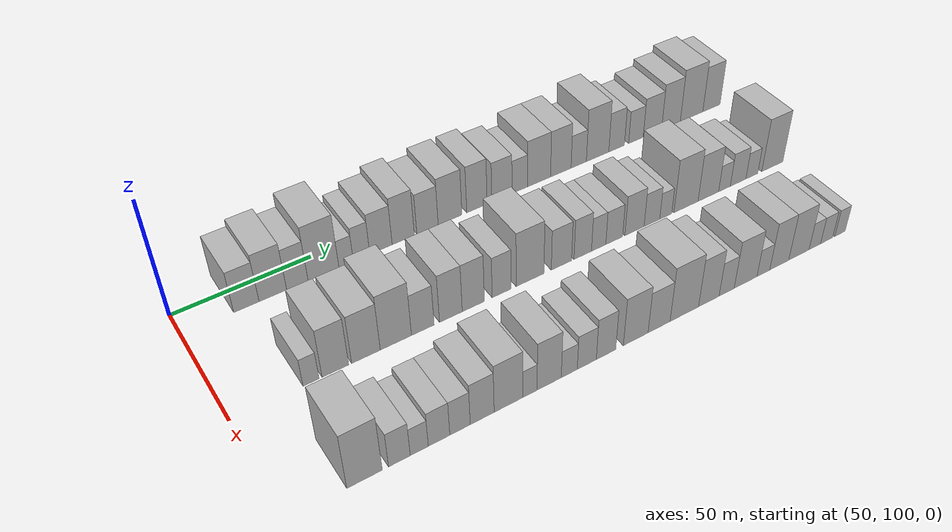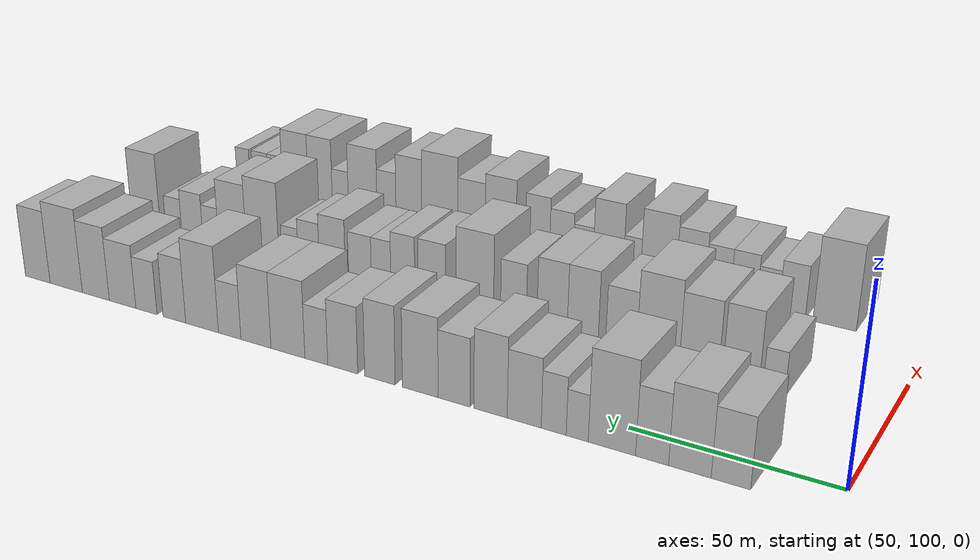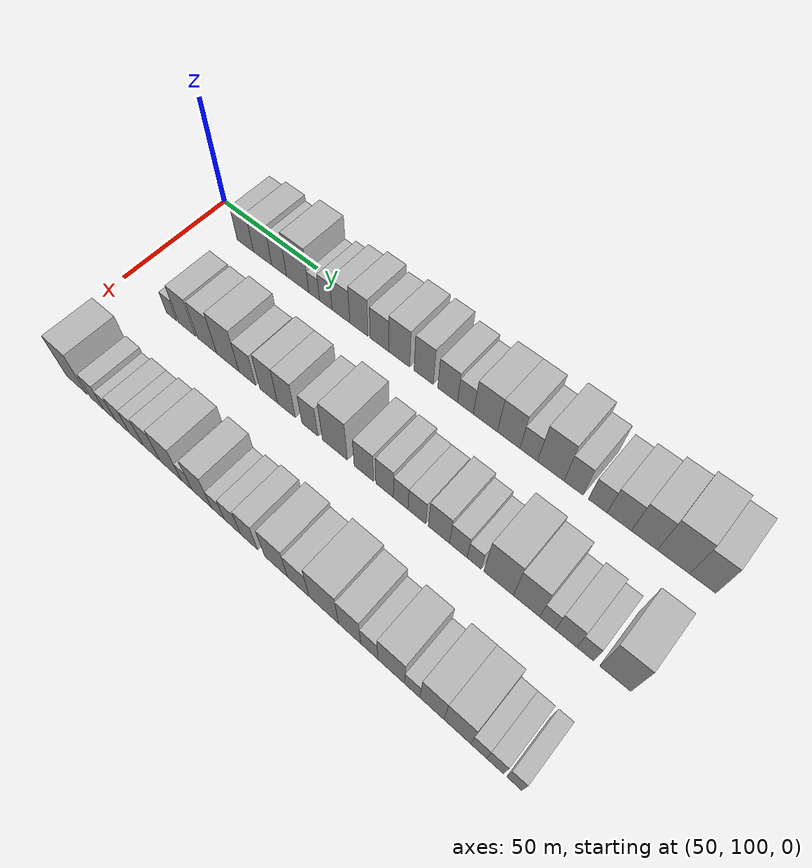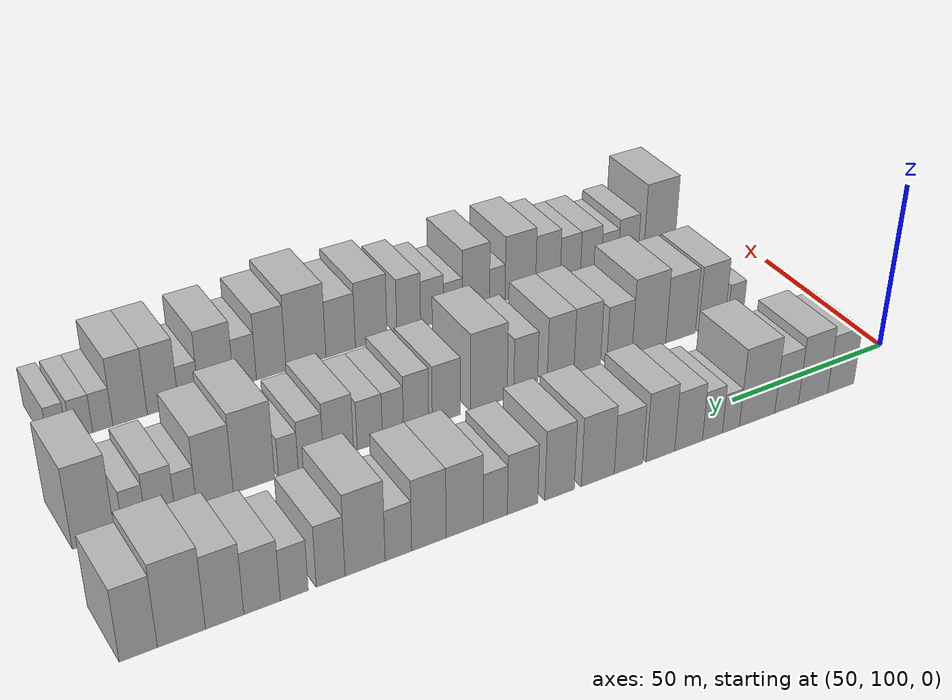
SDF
<sdf version="1.6">
 <world name="default">
  <model name="building_85">
   <static>1</static>
   <pose>50.0000 122.3066 0 0.000000 0.000000 0.000000</pose>
   <link name="link">
    <pose>0 0 9.00 0 0 0</pose>
    <collision name="collision"><geometry><box><size>20.0000 8.8296 18.0000</size></box></geometry></collision>
    <visual name="visual">
     <cast_shadows>0</cast_shadows>
     <geometry><box><size>20.0000 8.8296 18.0000</size></box></geometry>
     <material>
      <script>
       <uri>model://HANNAS_wall/materials/scripts</uri>
       <uri>model://HANNAS_wall/materials/textures</uri>
       <name>vrc/HANNAS_wall</name>
      </script>
     </material>
    </visual>
   </link>
  </model>
  <model name="building_86">
   <static>1</static>
   <pose>50.0000 131.6038 0 0.000000 0.000000 0.000000</pose>
   <link name="link">
    <pose>0 0 10.50 0 0 0</pose>
    <collision name="collision"><geometry><box><size>20.0000 9.7647 21.0000</size></box></geometry></collision>
    <visual name="visual">
     <cast_shadows>0</cast_shadows>
     <geometry><box><size>20.0000 9.7647 21.0000</size></box></geometry>
     <material>
      <script>
       <uri>model://HANNAS_wall/materials/scripts</uri>
       <uri>model://HANNAS_wall/materials/textures</uri>
       <name>vrc/HANNAS_wall</name>
      </script>
     </material>
    </visual>
   </link>
  </model>
  <model name="building_87">
   <static>1</static>
   <pose>50.0000 140.3548 0 0.000000 0.000000 0.000000</pose>
   <link name="link">
    <pose>0 0 9.00 0 0 0</pose>
    <collision name="collision"><geometry><box><size>20.0000 7.7373 18.0000</size></box></geometry></collision>
    <visual name="visual">
     <cast_shadows>0</cast_shadows>
     <geometry><box><size>20.0000 7.7373 18.0000</size></box></geometry>
     <material>
      <script>
       <uri>model://HANNAS_wall/materials/scripts</uri>
       <uri>model://HANNAS_wall/materials/textures</uri>
       <name>vrc/HANNAS_wall</name>
      </script>
     </material>
    </visual>
   </link>
  </model>
  <model name="building_88">
   <static>1</static>
   <pose>50.0000 149.9115 0 0.000000 0.000000 0.000000</pose>
   <link name="link">
    <pose>0 0 12.00 0 0 0</pose>
    <collision name="collision"><geometry><box><size>20.0000 11.3761 24.0000</size></box></geometry></collision>
    <visual name="visual">
     <cast_shadows>0</cast_shadows>
     <geometry><box><size>20.0000 11.3761 24.0000</size></box></geometry>
     <material>
      <script>
       <uri>model://HANNAS_wall/materials/scripts</uri>
       <uri>model://HANNAS_wall/materials/textures</uri>
       <name>vrc/HANNAS_wall</name>
      </script>
     </material>
    </visual>
   </link>
  </model>
  <model name="building_89">
   <static>1</static>
   <pose>50.0000 158.3068 0 0.000000 0.000000 0.000000</pose>
   <link name="link">
    <pose>0 0 6.00 0 0 0</pose>
    <collision name="collision"><geometry><box><size>20.0000 5.4146 12.0000</size></box></geometry></collision>
    <visual name="visual">
     <cast_shadows>0</cast_shadows>
     <geometry><box><size>20.0000 5.4146 12.0000</size></box></geometry>
     <material>
      <script>
       <uri>model://HANNAS_wall/materials/scripts</uri>
       <uri>model://HANNAS_wall/materials/textures</uri>
       <name>vrc/HANNAS_wall</name>
      </script>
     </material>
    </visual>
   </link>
  </model>
  <model name="building_90">
   <static>1</static>
   <pose>50.0000 164.1331 0 0.000000 0.000000 0.000000</pose>
   <link name="link">
    <pose>0 0 7.50 0 0 0</pose>
    <collision name="collision"><geometry><box><size>20.0000 6.2380 15.0000</size></box></geometry></collision>
    <visual name="visual">
     <cast_shadows>0</cast_shadows>
     <geometry><box><size>20.0000 6.2380 15.0000</size></box></geometry>
     <material>
      <script>
       <uri>model://HANNAS_wall/materials/scripts</uri>
       <uri>model://HANNAS_wall/materials/textures</uri>
       <name>vrc/HANNAS_wall</name>
      </script>
     </material>
    </visual>
   </link>
  </model>
  <model name="building_91">
   <static>1</static>
   <pose>50.0000 171.5712 0 0.000000 0.000000 0.000000</pose>
   <link name="link">
    <pose>0 0 9.00 0 0 0</pose>
    <collision name="collision"><geometry><box><size>20.0000 8.6383 18.0000</size></box></geometry></collision>
    <visual name="visual">
     <cast_shadows>0</cast_shadows>
     <geometry><box><size>20.0000 8.6383 18.0000</size></box></geometry>
     <material>
      <script>
       <uri>model://HANNAS_wall/materials/scripts</uri>
       <uri>model://HANNAS_wall/materials/textures</uri>
       <name>vrc/HANNAS_wall</name>
      </script>
     </material>
    </visual>
   </link>
  </model>
  <model name="building_92">
   <static>1</static>
   <pose>50.0000 180.2404 0 0.000000 0.000000 0.000000</pose>
   <link name="link">
    <pose>0 0 10.50 0 0 0</pose>
    <collision name="collision"><geometry><box><size>20.0000 8.7001 21.0000</size></box></geometry></collision>
    <visual name="visual">
     <cast_shadows>0</cast_shadows>
     <geometry><box><size>20.0000 8.7001 21.0000</size></box></geometry>
     <material>
      <script>
       <uri>model://HANNAS_wall/materials/scripts</uri>
       <uri>model://HANNAS_wall/materials/textures</uri>
       <name>vrc/HANNAS_wall</name>
      </script>
     </material>
    </visual>
   </link>
  </model>
  <model name="building_93">
   <static>1</static>
   <pose>50.0000 189.8528 0 0.000000 0.000000 0.000000</pose>
   <link name="link">
    <pose>0 0 9.00 0 0 0</pose>
    <collision name="collision"><geometry><box><size>20.0000 8.5246 18.0000</size></box></geometry></collision>
    <visual name="visual">
     <cast_shadows>0</cast_shadows>
     <geometry><box><size>20.0000 8.5246 18.0000</size></box></geometry>
     <material>
      <script>
       <uri>model://HANNAS_wall/materials/scripts</uri>
       <uri>model://HANNAS_wall/materials/textures</uri>
       <name>vrc/HANNAS_wall</name>
      </script>
     </material>
    </visual>
   </link>
  </model>
  <model name="building_94">
   <static>1</static>
   <pose>50.0000 198.9547 0 0.000000 0.000000 0.000000</pose>
   <link name="link">
    <pose>0 0 10.50 0 0 0</pose>
    <collision name="collision"><geometry><box><size>20.0000 9.6792 21.0000</size></box></geometry></collision>
    <visual name="visual">
     <cast_shadows>0</cast_shadows>
     <geometry><box><size>20.0000 9.6792 21.0000</size></box></geometry>
     <material>
      <script>
       <uri>model://HANNAS_wall/materials/scripts</uri>
       <uri>model://HANNAS_wall/materials/textures</uri>
       <name>vrc/HANNAS_wall</name>
      </script>
     </material>
    </visual>
   </link>
  </model>
  <model name="building_95">
   <static>1</static>
   <pose>50.0000 210.0387 0 0.000000 0.000000 0.000000</pose>
   <link name="link">
    <pose>0 0 10.50 0 0 0</pose>
    <collision name="collision"><geometry><box><size>20.0000 8.4889 21.0000</size></box></geometry></collision>
    <visual name="visual">
     <cast_shadows>0</cast_shadows>
     <geometry><box><size>20.0000 8.4889 21.0000</size></box></geometry>
     <material>
      <script>
       <uri>model://HANNAS_wall/materials/scripts</uri>
       <uri>model://HANNAS_wall/materials/textures</uri>
       <name>vrc/HANNAS_wall</name>
      </script>
     </material>
    </visual>
   </link>
  </model>
  <model name="building_96">
   <static>1</static>
   <pose>50.0000 220.5793 0 0.000000 0.000000 0.000000</pose>
   <link name="link">
    <pose>0 0 9.00 0 0 0</pose>
    <collision name="collision"><geometry><box><size>20.0000 8.5923 18.0000</size></box></geometry></collision>
    <visual name="visual">
     <cast_shadows>0</cast_shadows>
     <geometry><box><size>20.0000 8.5923 18.0000</size></box></geometry>
     <material>
      <script>
       <uri>model://HANNAS_wall/materials/scripts</uri>
       <uri>model://HANNAS_wall/materials/textures</uri>
       <name>vrc/HANNAS_wall</name>
      </script>
     </material>
    </visual>
   </link>
  </model>
  <model name="building_97">
   <static>1</static>
   <pose>50.0000 228.2194 0 0.000000 0.000000 0.000000</pose>
   <link name="link">
    <pose>0 0 7.50 0 0 0</pose>
    <collision name="collision"><geometry><box><size>20.0000 6.6878 15.0000</size></box></geometry></collision>
    <visual name="visual">
     <cast_shadows>0</cast_shadows>
     <geometry><box><size>20.0000 6.6878 15.0000</size></box></geometry>
     <material>
      <script>
       <uri>model://HANNAS_wall/materials/scripts</uri>
       <uri>model://HANNAS_wall/materials/textures</uri>
       <name>vrc/HANNAS_wall</name>
      </script>
     </material>
    </visual>
   </link>
  </model>
  <model name="building_98">
   <static>1</static>
   <pose>50.0000 236.6185 0 0.000000 0.000000 0.000000</pose>
   <link name="link">
    <pose>0 0 10.50 0 0 0</pose>
    <collision name="collision"><geometry><box><size>20.0000 10.1104 21.0000</size></box></geometry></collision>
    <visual name="visual">
     <cast_shadows>0</cast_shadows>
     <geometry><box><size>20.0000 10.1104 21.0000</size></box></geometry>
     <material>
      <script>
       <uri>model://HANNAS_wall/materials/scripts</uri>
       <uri>model://HANNAS_wall/materials/textures</uri>
       <name>vrc/HANNAS_wall</name>
      </script>
     </material>
    </visual>
   </link>
  </model>
  <model name="building_99">
   <static>1</static>
   <pose>50.0000 246.2642 0 0.000000 0.000000 0.000000</pose>
   <link name="link">
    <pose>0 0 10.50 0 0 0</pose>
    <collision name="collision"><geometry><box><size>20.0000 9.1811 21.0000</size></box></geometry></collision>
    <visual name="visual">
     <cast_shadows>0</cast_shadows>
     <geometry><box><size>20.0000 9.1811 21.0000</size></box></geometry>
     <material>
      <script>
       <uri>model://HANNAS_wall/materials/scripts</uri>
       <uri>model://HANNAS_wall/materials/textures</uri>
       <name>vrc/HANNAS_wall</name>
      </script>
     </material>
    </visual>
   </link>
  </model>
  <model name="building_100">
   <static>1</static>
   <pose>50.0000 254.3415 0 0.000000 0.000000 0.000000</pose>
   <link name="link">
    <pose>0 0 7.50 0 0 0</pose>
    <collision name="collision"><geometry><box><size>20.0000 6.9734 15.0000</size></box></geometry></collision>
    <visual name="visual">
     <cast_shadows>0</cast_shadows>
     <geometry><box><size>20.0000 6.9734 15.0000</size></box></geometry>
     <material>
      <script>
       <uri>model://HANNAS_wall/materials/scripts</uri>
       <uri>model://HANNAS_wall/materials/textures</uri>
       <name>vrc/HANNAS_wall</name>
      </script>
     </material>
    </visual>
   </link>
  </model>
  <model name="building_101">
   <static>1</static>
   <pose>50.0000 263.0122 0 0.000000 0.000000 0.000000</pose>
   <link name="link">
    <pose>0 0 12.00 0 0 0</pose>
    <collision name="collision"><geometry><box><size>20.0000 10.3681 24.0000</size></box></geometry></collision>
    <visual name="visual">
     <cast_shadows>0</cast_shadows>
     <geometry><box><size>20.0000 10.3681 24.0000</size></box></geometry>
     <material>
      <script>
       <uri>model://HANNAS_wall/materials/scripts</uri>
       <uri>model://HANNAS_wall/materials/textures</uri>
       <name>vrc/HANNAS_wall</name>
      </script>
     </material>
    </visual>
   </link>
  </model>
  <model name="building_102">
   <static>1</static>
   <pose>50.0000 271.8606 0 0.000000 0.000000 0.000000</pose>
   <link name="link">
    <pose>0 0 9.00 0 0 0</pose>
    <collision name="collision"><geometry><box><size>20.0000 7.3289 18.0000</size></box></geometry></collision>
    <visual name="visual">
     <cast_shadows>0</cast_shadows>
     <geometry><box><size>20.0000 7.3289 18.0000</size></box></geometry>
     <material>
      <script>
       <uri>model://HANNAS_wall/materials/scripts</uri>
       <uri>model://HANNAS_wall/materials/textures</uri>
       <name>vrc/HANNAS_wall</name>
      </script>
     </material>
    </visual>
   </link>
  </model>
  <model name="building_103">
   <static>1</static>
   <pose>50.0000 281.0077 0 0.000000 0.000000 0.000000</pose>
   <link name="link">
    <pose>0 0 7.50 0 0 0</pose>
    <collision name="collision"><geometry><box><size>20.0000 6.9652 15.0000</size></box></geometry></collision>
    <visual name="visual">
     <cast_shadows>0</cast_shadows>
     <geometry><box><size>20.0000 6.9652 15.0000</size></box></geometry>
     <material>
      <script>
       <uri>model://HANNAS_wall/materials/scripts</uri>
       <uri>model://HANNAS_wall/materials/textures</uri>
       <name>vrc/HANNAS_wall</name>
      </script>
     </material>
    </visual>
   </link>
  </model>
  <model name="building_104">
   <static>1</static>
   <pose>50.0000 288.9499 0 0.000000 0.000000 0.000000</pose>
   <link name="link">
    <pose>0 0 9.00 0 0 0</pose>
    <collision name="collision"><geometry><box><size>20.0000 8.9192 18.0000</size></box></geometry></collision>
    <visual name="visual">
     <cast_shadows>0</cast_shadows>
     <geometry><box><size>20.0000 8.9192 18.0000</size></box></geometry>
     <material>
      <script>
       <uri>model://HANNAS_wall/materials/scripts</uri>
       <uri>model://HANNAS_wall/materials/textures</uri>
       <name>vrc/HANNAS_wall</name>
      </script>
     </material>
    </visual>
   </link>
  </model>
  <model name="building_105">
   <static>1</static>
   <pose>50.0000 298.0296 0 0.000000 0.000000 0.000000</pose>
   <link name="link">
    <pose>0 0 10.50 0 0 0</pose>
    <collision name="collision"><geometry><box><size>20.0000 9.2401 21.0000</size></box></geometry></collision>
    <visual name="visual">
     <cast_shadows>0</cast_shadows>
     <geometry><box><size>20.0000 9.2401 21.0000</size></box></geometry>
     <material>
      <script>
       <uri>model://HANNAS_wall/materials/scripts</uri>
       <uri>model://HANNAS_wall/materials/textures</uri>
       <name>vrc/HANNAS_wall</name>
      </script>
     </material>
    </visual>
   </link>
  </model>
  <model name="building_106">
   <static>1</static>
   <pose>50.0000 308.3014 0 0.000000 0.000000 0.000000</pose>
   <link name="link">
    <pose>0 0 12.00 0 0 0</pose>
    <collision name="collision"><geometry><box><size>20.0000 11.3035 24.0000</size></box></geometry></collision>
    <visual name="visual">
     <cast_shadows>0</cast_shadows>
     <geometry><box><size>20.0000 11.3035 24.0000</size></box></geometry>
     <material>
      <script>
       <uri>model://HANNAS_wall/materials/scripts</uri>
       <uri>model://HANNAS_wall/materials/textures</uri>
       <name>vrc/HANNAS_wall</name>
      </script>
     </material>
    </visual>
   </link>
  </model>
  <model name="building_107">
   <static>1</static>
   <pose>50.0000 318.3527 0 0.000000 0.000000 0.000000</pose>
   <link name="link">
    <pose>0 0 10.50 0 0 0</pose>
    <collision name="collision"><geometry><box><size>20.0000 8.7992 21.0000</size></box></geometry></collision>
    <visual name="visual">
     <cast_shadows>0</cast_shadows>
     <geometry><box><size>20.0000 8.7992 21.0000</size></box></geometry>
     <material>
      <script>
       <uri>model://HANNAS_wall/materials/scripts</uri>
       <uri>model://HANNAS_wall/materials/textures</uri>
       <name>vrc/HANNAS_wall</name>
      </script>
     </material>
    </visual>
   </link>
  </model>
  <model name="building_226">
   <static>1</static>
   <pose>90.0000 126.4555 0 0.000000 0.000000 0.000000</pose>
   <link name="link">
    <pose>0 0 6.00 0 0 0</pose>
    <collision name="collision"><geometry><box><size>20.0000 5.3719 12.0000</size></box></geometry></collision>
    <visual name="visual">
     <cast_shadows>0</cast_shadows>
     <geometry><box><size>20.0000 5.3719 12.0000</size></box></geometry>
     <material>
      <script>
       <uri>model://HANNAS_wall/materials/scripts</uri>
       <uri>model://HANNAS_wall/materials/textures</uri>
       <name>vrc/HANNAS_wall</name>
      </script>
     </material>
    </visual>
   </link>
  </model>
  <model name="building_227">
   <static>1</static>
   <pose>90.0000 134.6714 0 0.000000 0.000000 0.000000</pose>
   <link name="link">
    <pose>0 0 10.50 0 0 0</pose>
    <collision name="collision"><geometry><box><size>20.0000 9.0597 21.0000</size></box></geometry></collision>
    <visual name="visual">
     <cast_shadows>0</cast_shadows>
     <geometry><box><size>20.0000 9.0597 21.0000</size></box></geometry>
     <material>
      <script>
       <uri>model://HANNAS_wall/materials/scripts</uri>
       <uri>model://HANNAS_wall/materials/textures</uri>
       <name>vrc/HANNAS_wall</name>
      </script>
     </material>
    </visual>
   </link>
  </model>
  <model name="building_228">
   <static>1</static>
   <pose>90.0000 145.1878 0 0.000000 0.000000 0.000000</pose>
   <link name="link">
    <pose>0 0 10.50 0 0 0</pose>
    <collision name="collision"><geometry><box><size>20.0000 9.9732 21.0000</size></box></geometry></collision>
    <visual name="visual">
     <cast_shadows>0</cast_shadows>
     <geometry><box><size>20.0000 9.9732 21.0000</size></box></geometry>
     <material>
      <script>
       <uri>model://HANNAS_wall/materials/scripts</uri>
       <uri>model://HANNAS_wall/materials/textures</uri>
       <name>vrc/HANNAS_wall</name>
      </script>
     </material>
    </visual>
   </link>
  </model>
  <model name="building_229">
   <static>1</static>
   <pose>90.0000 155.7486 0 0.000000 0.000000 0.000000</pose>
   <link name="link">
    <pose>0 0 12.00 0 0 0</pose>
    <collision name="collision"><geometry><box><size>20.0000 11.1484 24.0000</size></box></geometry></collision>
    <visual name="visual">
     <cast_shadows>0</cast_shadows>
     <geometry><box><size>20.0000 11.1484 24.0000</size></box></geometry>
     <material>
      <script>
       <uri>model://HANNAS_wall/materials/scripts</uri>
       <uri>model://HANNAS_wall/materials/textures</uri>
       <name>vrc/HANNAS_wall</name>
      </script>
     </material>
    </visual>
   </link>
  </model>
  <model name="building_230">
   <static>1</static>
   <pose>90.0000 165.4426 0 0.000000 0.000000 0.000000</pose>
   <link name="link">
    <pose>0 0 9.00 0 0 0</pose>
    <collision name="collision"><geometry><box><size>20.0000 8.2397 18.0000</size></box></geometry></collision>
    <visual name="visual">
     <cast_shadows>0</cast_shadows>
     <geometry><box><size>20.0000 8.2397 18.0000</size></box></geometry>
     <material>
      <script>
       <uri>model://HANNAS_wall/materials/scripts</uri>
       <uri>model://HANNAS_wall/materials/textures</uri>
       <name>vrc/HANNAS_wall</name>
      </script>
     </material>
    </visual>
   </link>
  </model>
  <model name="building_231">
   <static>1</static>
   <pose>90.0000 175.7999 0 0.000000 0.000000 0.000000</pose>
   <link name="link">
    <pose>0 0 10.50 0 0 0</pose>
    <collision name="collision"><geometry><box><size>20.0000 8.4748 21.0000</size></box></geometry></collision>
    <visual name="visual">
     <cast_shadows>0</cast_shadows>
     <geometry><box><size>20.0000 8.4748 21.0000</size></box></geometry>
     <material>
      <script>
       <uri>model://HANNAS_wall/materials/scripts</uri>
       <uri>model://HANNAS_wall/materials/textures</uri>
       <name>vrc/HANNAS_wall</name>
      </script>
     </material>
    </visual>
   </link>
  </model>
  <model name="building_232">
   <static>1</static>
   <pose>90.0000 184.2462 0 0.000000 0.000000 0.000000</pose>
   <link name="link">
    <pose>0 0 10.50 0 0 0</pose>
    <collision name="collision"><geometry><box><size>20.0000 8.4179 21.0000</size></box></geometry></collision>
    <visual name="visual">
     <cast_shadows>0</cast_shadows>
     <geometry><box><size>20.0000 8.4179 21.0000</size></box></geometry>
     <material>
      <script>
       <uri>model://HANNAS_wall/materials/scripts</uri>
       <uri>model://HANNAS_wall/materials/textures</uri>
       <name>vrc/HANNAS_wall</name>
      </script>
     </material>
    </visual>
   </link>
  </model>
  <model name="building_233">
   <static>1</static>
   <pose>90.0000 195.1250 0 0.000000 0.000000 0.000000</pose>
   <link name="link">
    <pose>0 0 9.00 0 0 0</pose>
    <collision name="collision"><geometry><box><size>20.0000 7.3397 18.0000</size></box></geometry></collision>
    <visual name="visual">
     <cast_shadows>0</cast_shadows>
     <geometry><box><size>20.0000 7.3397 18.0000</size></box></geometry>
     <material>
      <script>
       <uri>model://HANNAS_wall/materials/scripts</uri>
       <uri>model://HANNAS_wall/materials/textures</uri>
       <name>vrc/HANNAS_wall</name>
      </script>
     </material>
    </visual>
   </link>
  </model>
  <model name="building_234">
   <static>1</static>
   <pose>90.0000 206.3223 0 0.000000 0.000000 0.000000</pose>
   <link name="link">
    <pose>0 0 12.00 0 0 0</pose>
    <collision name="collision"><geometry><box><size>20.0000 11.0550 24.0000</size></box></geometry></collision>
    <visual name="visual">
     <cast_shadows>0</cast_shadows>
     <geometry><box><size>20.0000 11.0550 24.0000</size></box></geometry>
     <material>
      <script>
       <uri>model://HANNAS_wall/materials/scripts</uri>
       <uri>model://HANNAS_wall/materials/textures</uri>
       <name>vrc/HANNAS_wall</name>
      </script>
     </material>
    </visual>
   </link>
  </model>
  <model name="building_235">
   <static>1</static>
   <pose>90.0000 218.9924 0 0.000000 0.000000 0.000000</pose>
   <link name="link">
    <pose>0 0 9.00 0 0 0</pose>
    <collision name="collision"><geometry><box><size>20.0000 8.2851 18.0000</size></box></geometry></collision>
    <visual name="visual">
     <cast_shadows>0</cast_shadows>
     <geometry><box><size>20.0000 8.2851 18.0000</size></box></geometry>
     <material>
      <script>
       <uri>model://HANNAS_wall/materials/scripts</uri>
       <uri>model://HANNAS_wall/materials/textures</uri>
       <name>vrc/HANNAS_wall</name>
      </script>
     </material>
    </visual>
   </link>
  </model>
  <model name="building_236">
   <static>1</static>
   <pose>90.0000 227.7910 0 0.000000 0.000000 0.000000</pose>
   <link name="link">
    <pose>0 0 9.00 0 0 0</pose>
    <collision name="collision"><geometry><box><size>20.0000 7.3121 18.0000</size></box></geometry></collision>
    <visual name="visual">
     <cast_shadows>0</cast_shadows>
     <geometry><box><size>20.0000 7.3121 18.0000</size></box></geometry>
     <material>
      <script>
       <uri>model://HANNAS_wall/materials/scripts</uri>
       <uri>model://HANNAS_wall/materials/textures</uri>
       <name>vrc/HANNAS_wall</name>
      </script>
     </material>
    </visual>
   </link>
  </model>
  <model name="building_237">
   <static>1</static>
   <pose>90.0000 234.4759 0 0.000000 0.000000 0.000000</pose>
   <link name="link">
    <pose>0 0 7.50 0 0 0</pose>
    <collision name="collision"><geometry><box><size>20.0000 6.0578 15.0000</size></box></geometry></collision>
    <visual name="visual">
     <cast_shadows>0</cast_shadows>
     <geometry><box><size>20.0000 6.0578 15.0000</size></box></geometry>
     <material>
      <script>
       <uri>model://HANNAS_wall/materials/scripts</uri>
       <uri>model://HANNAS_wall/materials/textures</uri>
       <name>vrc/HANNAS_wall</name>
      </script>
     </material>
    </visual>
   </link>
  </model>
  <model name="building_238">
   <static>1</static>
   <pose>90.0000 241.1031 0 0.000000 0.000000 0.000000</pose>
   <link name="link">
    <pose>0 0 7.50 0 0 0</pose>
    <collision name="collision"><geometry><box><size>20.0000 7.1966 15.0000</size></box></geometry></collision>
    <visual name="visual">
     <cast_shadows>0</cast_shadows>
     <geometry><box><size>20.0000 7.1966 15.0000</size></box></geometry>
     <material>
      <script>
       <uri>model://HANNAS_wall/materials/scripts</uri>
       <uri>model://HANNAS_wall/materials/textures</uri>
       <name>vrc/HANNAS_wall</name>
      </script>
     </material>
    </visual>
   </link>
  </model>
  <model name="building_239">
   <static>1</static>
   <pose>90.0000 249.8840 0 0.000000 0.000000 0.000000</pose>
   <link name="link">
    <pose>0 0 9.00 0 0 0</pose>
    <collision name="collision"><geometry><box><size>20.0000 8.3651 18.0000</size></box></geometry></collision>
    <visual name="visual">
     <cast_shadows>0</cast_shadows>
     <geometry><box><size>20.0000 8.3651 18.0000</size></box></geometry>
     <material>
      <script>
       <uri>model://HANNAS_wall/materials/scripts</uri>
       <uri>model://HANNAS_wall/materials/textures</uri>
       <name>vrc/HANNAS_wall</name>
      </script>
     </material>
    </visual>
   </link>
  </model>
  <model name="building_240">
   <static>1</static>
   <pose>90.0000 257.5307 0 0.000000 0.000000 0.000000</pose>
   <link name="link">
    <pose>0 0 7.50 0 0 0</pose>
    <collision name="collision"><geometry><box><size>20.0000 6.9283 15.0000</size></box></geometry></collision>
    <visual name="visual">
     <cast_shadows>0</cast_shadows>
     <geometry><box><size>20.0000 6.9283 15.0000</size></box></geometry>
     <material>
      <script>
       <uri>model://HANNAS_wall/materials/scripts</uri>
       <uri>model://HANNAS_wall/materials/textures</uri>
       <name>vrc/HANNAS_wall</name>
      </script>
     </material>
    </visual>
   </link>
  </model>
  <model name="building_241">
   <static>1</static>
   <pose>90.0000 263.6832 0 0.000000 0.000000 0.000000</pose>
   <link name="link">
    <pose>0 0 6.00 0 0 0</pose>
    <collision name="collision"><geometry><box><size>20.0000 5.3765 12.0000</size></box></geometry></collision>
    <visual name="visual">
     <cast_shadows>0</cast_shadows>
     <geometry><box><size>20.0000 5.3765 12.0000</size></box></geometry>
     <material>
      <script>
       <uri>model://HANNAS_wall/materials/scripts</uri>
       <uri>model://HANNAS_wall/materials/textures</uri>
       <name>vrc/HANNAS_wall</name>
      </script>
     </material>
    </visual>
   </link>
  </model>
  <model name="building_242">
   <static>1</static>
   <pose>90.0000 272.8905 0 0.000000 0.000000 0.000000</pose>
   <link name="link">
    <pose>0 0 12.00 0 0 0</pose>
    <collision name="collision"><geometry><box><size>20.0000 11.0382 24.0000</size></box></geometry></collision>
    <visual name="visual">
     <cast_shadows>0</cast_shadows>
     <geometry><box><size>20.0000 11.0382 24.0000</size></box></geometry>
     <material>
      <script>
       <uri>model://HANNAS_wall/materials/scripts</uri>
       <uri>model://HANNAS_wall/materials/textures</uri>
       <name>vrc/HANNAS_wall</name>
      </script>
     </material>
    </visual>
   </link>
  </model>
  <model name="building_243">
   <static>1</static>
   <pose>90.0000 283.2182 0 0.000000 0.000000 0.000000</pose>
   <link name="link">
    <pose>0 0 10.50 0 0 0</pose>
    <collision name="collision"><geometry><box><size>20.0000 9.6172 21.0000</size></box></geometry></collision>
    <visual name="visual">
     <cast_shadows>0</cast_shadows>
     <geometry><box><size>20.0000 9.6172 21.0000</size></box></geometry>
     <material>
      <script>
       <uri>model://HANNAS_wall/materials/scripts</uri>
       <uri>model://HANNAS_wall/materials/textures</uri>
       <name>vrc/HANNAS_wall</name>
      </script>
     </material>
    </visual>
   </link>
  </model>
  <model name="building_244">
   <static>1</static>
   <pose>90.0000 290.7925 0 0.000000 0.000000 0.000000</pose>
   <link name="link">
    <pose>0 0 6.00 0 0 0</pose>
    <collision name="collision"><geometry><box><size>20.0000 5.5314 12.0000</size></box></geometry></collision>
    <visual name="visual">
     <cast_shadows>0</cast_shadows>
     <geometry><box><size>20.0000 5.5314 12.0000</size></box></geometry>
     <material>
      <script>
       <uri>model://HANNAS_wall/materials/scripts</uri>
       <uri>model://HANNAS_wall/materials/textures</uri>
       <name>vrc/HANNAS_wall</name>
      </script>
     </material>
    </visual>
   </link>
  </model>
  <model name="building_245">
   <static>1</static>
   <pose>90.0000 297.2946 0 0.000000 0.000000 0.000000</pose>
   <link name="link">
    <pose>0 0 7.50 0 0 0</pose>
    <collision name="collision"><geometry><box><size>20.0000 7.4727 15.0000</size></box></geometry></collision>
    <visual name="visual">
     <cast_shadows>0</cast_shadows>
     <geometry><box><size>20.0000 7.4727 15.0000</size></box></geometry>
     <material>
      <script>
       <uri>model://HANNAS_wall/materials/scripts</uri>
       <uri>model://HANNAS_wall/materials/textures</uri>
       <name>vrc/HANNAS_wall</name>
      </script>
     </material>
    </visual>
   </link>
  </model>
  <model name="building_246">
   <static>1</static>
   <pose>90.0000 303.9105 0 0.000000 0.000000 0.000000</pose>
   <link name="link">
    <pose>0 0 6.00 0 0 0</pose>
    <collision name="collision"><geometry><box><size>20.0000 5.7591 12.0000</size></box></geometry></collision>
    <visual name="visual">
     <cast_shadows>0</cast_shadows>
     <geometry><box><size>20.0000 5.7591 12.0000</size></box></geometry>
     <material>
      <script>
       <uri>model://HANNAS_wall/materials/scripts</uri>
       <uri>model://HANNAS_wall/materials/textures</uri>
       <name>vrc/HANNAS_wall</name>
      </script>
     </material>
    </visual>
   </link>
  </model>
  <model name="building_247">
   <static>1</static>
   <pose>90.0000 313.9900 0 0.000000 0.000000 0.000000</pose>
   <link name="link">
    <pose>0 0 12.00 0 0 0</pose>
    <collision name="collision"><geometry><box><size>20.0000 10.3999 24.0000</size></box></geometry></collision>
    <visual name="visual">
     <cast_shadows>0</cast_shadows>
     <geometry><box><size>20.0000 10.3999 24.0000</size></box></geometry>
     <material>
      <script>
       <uri>model://HANNAS_wall/materials/scripts</uri>
       <uri>model://HANNAS_wall/materials/textures</uri>
       <name>vrc/HANNAS_wall</name>
      </script>
     </material>
    </visual>
   </link>
  </model>
  <model name="building_363">
   <static>1</static>
   <pose>130.0000 124.1075 0 0.000000 0.000000 0.000000</pose>
   <link name="link">
    <pose>0 0 12.00 0 0 0</pose>
    <collision name="collision"><geometry><box><size>20.0000 11.2288 24.0000</size></box></geometry></collision>
    <visual name="visual">
     <cast_shadows>0</cast_shadows>
     <geometry><box><size>20.0000 11.2288 24.0000</size></box></geometry>
     <material>
      <script>
       <uri>model://HANNAS_wall/materials/scripts</uri>
       <uri>model://HANNAS_wall/materials/textures</uri>
       <name>vrc/HANNAS_wall</name>
      </script>
     </material>
    </visual>
   </link>
  </model>
  <model name="building_364">
   <static>1</static>
   <pose>130.0000 135.2427 0 0.000000 0.000000 0.000000</pose>
   <link name="link">
    <pose>0 0 7.50 0 0 0</pose>
    <collision name="collision"><geometry><box><size>20.0000 7.0417 15.0000</size></box></geometry></collision>
    <visual name="visual">
     <cast_shadows>0</cast_shadows>
     <geometry><box><size>20.0000 7.0417 15.0000</size></box></geometry>
     <material>
      <script>
       <uri>model://HANNAS_wall/materials/scripts</uri>
       <uri>model://HANNAS_wall/materials/textures</uri>
       <name>vrc/HANNAS_wall</name>
      </script>
     </material>
    </visual>
   </link>
  </model>
  <model name="building_365">
   <static>1</static>
   <pose>130.0000 141.7312 0 0.000000 0.000000 0.000000</pose>
   <link name="link">
    <pose>0 0 6.00 0 0 0</pose>
    <collision name="collision"><geometry><box><size>20.0000 5.9354 12.0000</size></box></geometry></collision>
    <visual name="visual">
     <cast_shadows>0</cast_shadows>
     <geometry><box><size>20.0000 5.9354 12.0000</size></box></geometry>
     <material>
      <script>
       <uri>model://HANNAS_wall/materials/scripts</uri>
       <uri>model://HANNAS_wall/materials/textures</uri>
       <name>vrc/HANNAS_wall</name>
      </script>
     </material>
    </visual>
   </link>
  </model>
  <model name="building_366">
   <static>1</static>
   <pose>130.0000 148.3089 0 0.000000 0.000000 0.000000</pose>
   <link name="link">
    <pose>0 0 7.50 0 0 0</pose>
    <collision name="collision"><geometry><box><size>20.0000 7.2199 15.0000</size></box></geometry></collision>
    <visual name="visual">
     <cast_shadows>0</cast_shadows>
     <geometry><box><size>20.0000 7.2199 15.0000</size></box></geometry>
     <material>
      <script>
       <uri>model://HANNAS_wall/materials/scripts</uri>
       <uri>model://HANNAS_wall/materials/textures</uri>
       <name>vrc/HANNAS_wall</name>
      </script>
     </material>
    </visual>
   </link>
  </model>
  <model name="building_367">
   <static>1</static>
   <pose>130.0000 155.3945 0 0.000000 0.000000 0.000000</pose>
   <link name="link">
    <pose>0 0 7.50 0 0 0</pose>
    <collision name="collision"><geometry><box><size>20.0000 6.9513 15.0000</size></box></geometry></collision>
    <visual name="visual">
     <cast_shadows>0</cast_shadows>
     <geometry><box><size>20.0000 6.9513 15.0000</size></box></geometry>
     <material>
      <script>
       <uri>model://HANNAS_wall/materials/scripts</uri>
       <uri>model://HANNAS_wall/materials/textures</uri>
       <name>vrc/HANNAS_wall</name>
      </script>
     </material>
    </visual>
   </link>
  </model>
  <model name="building_368">
   <static>1</static>
   <pose>130.0000 163.0299 0 0.000000 0.000000 0.000000</pose>
   <link name="link">
    <pose>0 0 9.00 0 0 0</pose>
    <collision name="collision"><geometry><box><size>20.0000 8.3195 18.0000</size></box></geometry></collision>
    <visual name="visual">
     <cast_shadows>0</cast_shadows>
     <geometry><box><size>20.0000 8.3195 18.0000</size></box></geometry>
     <material>
      <script>
       <uri>model://HANNAS_wall/materials/scripts</uri>
       <uri>model://HANNAS_wall/materials/textures</uri>
       <name>vrc/HANNAS_wall</name>
      </script>
     </material>
    </visual>
   </link>
  </model>
  <model name="building_369">
   <static>1</static>
   <pose>130.0000 172.2705 0 0.000000 0.000000 0.000000</pose>
   <link name="link">
    <pose>0 0 10.50 0 0 0</pose>
    <collision name="collision"><geometry><box><size>20.0000 10.1616 21.0000</size></box></geometry></collision>
    <visual name="visual">
     <cast_shadows>0</cast_shadows>
     <geometry><box><size>20.0000 10.1616 21.0000</size></box></geometry>
     <material>
      <script>
       <uri>model://HANNAS_wall/materials/scripts</uri>
       <uri>model://HANNAS_wall/materials/textures</uri>
       <name>vrc/HANNAS_wall</name>
      </script>
     </material>
    </visual>
   </link>
  </model>
  <model name="building_370">
   <static>1</static>
   <pose>130.0000 179.8959 0 0.000000 0.000000 0.000000</pose>
   <link name="link">
    <pose>0 0 6.00 0 0 0</pose>
    <collision name="collision"><geometry><box><size>20.0000 5.0892 12.0000</size></box></geometry></collision>
    <visual name="visual">
     <cast_shadows>0</cast_shadows>
     <geometry><box><size>20.0000 5.0892 12.0000</size></box></geometry>
     <material>
      <script>
       <uri>model://HANNAS_wall/materials/scripts</uri>
       <uri>model://HANNAS_wall/materials/textures</uri>
       <name>vrc/HANNAS_wall</name>
      </script>
     </material>
    </visual>
   </link>
  </model>
  <model name="building_371">
   <static>1</static>
   <pose>130.0000 186.9052 0 0.000000 0.000000 0.000000</pose>
   <link name="link">
    <pose>0 0 10.50 0 0 0</pose>
    <collision name="collision"><geometry><box><size>20.0000 8.9294 21.0000</size></box></geometry></collision>
    <visual name="visual">
     <cast_shadows>0</cast_shadows>
     <geometry><box><size>20.0000 8.9294 21.0000</size></box></geometry>
     <material>
      <script>
       <uri>model://HANNAS_wall/materials/scripts</uri>
       <uri>model://HANNAS_wall/materials/textures</uri>
       <name>vrc/HANNAS_wall</name>
      </script>
     </material>
    </visual>
   </link>
  </model>
  <model name="building_372">
   <static>1</static>
   <pose>130.0000 194.3571 0 0.000000 0.000000 0.000000</pose>
   <link name="link">
    <pose>0 0 6.00 0 0 0</pose>
    <collision name="collision"><geometry><box><size>20.0000 5.9744 12.0000</size></box></geometry></collision>
    <visual name="visual">
     <cast_shadows>0</cast_shadows>
     <geometry><box><size>20.0000 5.9744 12.0000</size></box></geometry>
     <material>
      <script>
       <uri>model://HANNAS_wall/materials/scripts</uri>
       <uri>model://HANNAS_wall/materials/textures</uri>
       <name>vrc/HANNAS_wall</name>
      </script>
     </material>
    </visual>
   </link>
  </model>
  <model name="building_373">
   <static>1</static>
   <pose>130.0000 200.9504 0 0.000000 0.000000 0.000000</pose>
   <link name="link">
    <pose>0 0 7.50 0 0 0</pose>
    <collision name="collision"><geometry><box><size>20.0000 7.2123 15.0000</size></box></geometry></collision>
    <visual name="visual">
     <cast_shadows>0</cast_shadows>
     <geometry><box><size>20.0000 7.2123 15.0000</size></box></geometry>
     <material>
      <script>
       <uri>model://HANNAS_wall/materials/scripts</uri>
       <uri>model://HANNAS_wall/materials/textures</uri>
       <name>vrc/HANNAS_wall</name>
      </script>
     </material>
    </visual>
   </link>
  </model>
  <model name="building_374">
   <static>1</static>
   <pose>130.0000 208.3010 0 0.000000 0.000000 0.000000</pose>
   <link name="link">
    <pose>0 0 9.00 0 0 0</pose>
    <collision name="collision"><geometry><box><size>20.0000 7.4889 18.0000</size></box></geometry></collision>
    <visual name="visual">
     <cast_shadows>0</cast_shadows>
     <geometry><box><size>20.0000 7.4889 18.0000</size></box></geometry>
     <material>
      <script>
       <uri>model://HANNAS_wall/materials/scripts</uri>
       <uri>model://HANNAS_wall/materials/textures</uri>
       <name>vrc/HANNAS_wall</name>
      </script>
     </material>
    </visual>
   </link>
  </model>
  <model name="building_375">
   <static>1</static>
   <pose>130.0000 219.9308 0 0.000000 0.000000 0.000000</pose>
   <link name="link">
    <pose>0 0 10.50 0 0 0</pose>
    <collision name="collision"><geometry><box><size>20.0000 9.7706 21.0000</size></box></geometry></collision>
    <visual name="visual">
     <cast_shadows>0</cast_shadows>
     <geometry><box><size>20.0000 9.7706 21.0000</size></box></geometry>
     <material>
      <script>
       <uri>model://HANNAS_wall/materials/scripts</uri>
       <uri>model://HANNAS_wall/materials/textures</uri>
       <name>vrc/HANNAS_wall</name>
      </script>
     </material>
    </visual>
   </link>
  </model>
  <model name="building_376">
   <static>1</static>
   <pose>130.0000 229.2615 0 0.000000 0.000000 0.000000</pose>
   <link name="link">
    <pose>0 0 9.00 0 0 0</pose>
    <collision name="collision"><geometry><box><size>20.0000 8.8908 18.0000</size></box></geometry></collision>
    <visual name="visual">
     <cast_shadows>0</cast_shadows>
     <geometry><box><size>20.0000 8.8908 18.0000</size></box></geometry>
     <material>
      <script>
       <uri>model://HANNAS_wall/materials/scripts</uri>
       <uri>model://HANNAS_wall/materials/textures</uri>
       <name>vrc/HANNAS_wall</name>
      </script>
     </material>
    </visual>
   </link>
  </model>
  <model name="building_377">
   <static>1</static>
   <pose>130.0000 239.6109 0 0.000000 0.000000 0.000000</pose>
   <link name="link">
    <pose>0 0 12.00 0 0 0</pose>
    <collision name="collision"><geometry><box><size>20.0000 11.8081 24.0000</size></box></geometry></collision>
    <visual name="visual">
     <cast_shadows>0</cast_shadows>
     <geometry><box><size>20.0000 11.8081 24.0000</size></box></geometry>
     <material>
      <script>
       <uri>model://HANNAS_wall/materials/scripts</uri>
       <uri>model://HANNAS_wall/materials/textures</uri>
       <name>vrc/HANNAS_wall</name>
      </script>
     </material>
    </visual>
   </link>
  </model>
  <model name="building_378">
   <static>1</static>
   <pose>130.0000 249.8597 0 0.000000 0.000000 0.000000</pose>
   <link name="link">
    <pose>0 0 10.50 0 0 0</pose>
    <collision name="collision"><geometry><box><size>20.0000 8.6896 21.0000</size></box></geometry></collision>
    <visual name="visual">
     <cast_shadows>0</cast_shadows>
     <geometry><box><size>20.0000 8.6896 21.0000</size></box></geometry>
     <material>
      <script>
       <uri>model://HANNAS_wall/materials/scripts</uri>
       <uri>model://HANNAS_wall/materials/textures</uri>
       <name>vrc/HANNAS_wall</name>
      </script>
     </material>
    </visual>
   </link>
  </model>
  <model name="building_379">
   <static>1</static>
   <pose>130.0000 257.4490 0 0.000000 0.000000 0.000000</pose>
   <link name="link">
    <pose>0 0 7.50 0 0 0</pose>
    <collision name="collision"><geometry><box><size>20.0000 6.4889 15.0000</size></box></geometry></collision>
    <visual name="visual">
     <cast_shadows>0</cast_shadows>
     <geometry><box><size>20.0000 6.4889 15.0000</size></box></geometry>
     <material>
      <script>
       <uri>model://HANNAS_wall/materials/scripts</uri>
       <uri>model://HANNAS_wall/materials/textures</uri>
       <name>vrc/HANNAS_wall</name>
      </script>
     </material>
    </visual>
   </link>
  </model>
  <model name="building_380">
   <static>1</static>
   <pose>130.0000 265.6832 0 0.000000 0.000000 0.000000</pose>
   <link name="link">
    <pose>0 0 10.50 0 0 0</pose>
    <collision name="collision"><geometry><box><size>20.0000 9.9795 21.0000</size></box></geometry></collision>
    <visual name="visual">
     <cast_shadows>0</cast_shadows>
     <geometry><box><size>20.0000 9.9795 21.0000</size></box></geometry>
     <material>
      <script>
       <uri>model://HANNAS_wall/materials/scripts</uri>
       <uri>model://HANNAS_wall/materials/textures</uri>
       <name>vrc/HANNAS_wall</name>
      </script>
     </material>
    </visual>
   </link>
  </model>
  <model name="building_381">
   <static>1</static>
   <pose>130.0000 273.5120 0 0.000000 0.000000 0.000000</pose>
   <link name="link">
    <pose>0 0 6.00 0 0 0</pose>
    <collision name="collision"><geometry><box><size>20.0000 5.6781 12.0000</size></box></geometry></collision>
    <visual name="visual">
     <cast_shadows>0</cast_shadows>
     <geometry><box><size>20.0000 5.6781 12.0000</size></box></geometry>
     <material>
      <script>
       <uri>model://HANNAS_wall/materials/scripts</uri>
       <uri>model://HANNAS_wall/materials/textures</uri>
       <name>vrc/HANNAS_wall</name>
      </script>
     </material>
    </visual>
   </link>
  </model>
  <model name="building_382">
   <static>1</static>
   <pose>130.0000 280.6457 0 0.000000 0.000000 0.000000</pose>
   <link name="link">
    <pose>0 0 10.50 0 0 0</pose>
    <collision name="collision"><geometry><box><size>20.0000 8.5892 21.0000</size></box></geometry></collision>
    <visual name="visual">
     <cast_shadows>0</cast_shadows>
     <geometry><box><size>20.0000 8.5892 21.0000</size></box></geometry>
     <material>
      <script>
       <uri>model://HANNAS_wall/materials/scripts</uri>
       <uri>model://HANNAS_wall/materials/textures</uri>
       <name>vrc/HANNAS_wall</name>
      </script>
     </material>
    </visual>
   </link>
  </model>
  <model name="building_383">
   <static>1</static>
   <pose>130.0000 289.6235 0 0.000000 0.000000 0.000000</pose>
   <link name="link">
    <pose>0 0 10.50 0 0 0</pose>
    <collision name="collision"><geometry><box><size>20.0000 9.3665 21.0000</size></box></geometry></collision>
    <visual name="visual">
     <cast_shadows>0</cast_shadows>
     <geometry><box><size>20.0000 9.3665 21.0000</size></box></geometry>
     <material>
      <script>
       <uri>model://HANNAS_wall/materials/scripts</uri>
       <uri>model://HANNAS_wall/materials/textures</uri>
       <name>vrc/HANNAS_wall</name>
      </script>
     </material>
    </visual>
   </link>
  </model>
  <model name="building_384">
   <static>1</static>
   <pose>130.0000 297.0006 0 0.000000 0.000000 0.000000</pose>
   <link name="link">
    <pose>0 0 6.00 0 0 0</pose>
    <collision name="collision"><geometry><box><size>20.0000 5.3875 12.0000</size></box></geometry></collision>
    <visual name="visual">
     <cast_shadows>0</cast_shadows>
     <geometry><box><size>20.0000 5.3875 12.0000</size></box></geometry>
     <material>
      <script>
       <uri>model://HANNAS_wall/materials/scripts</uri>
       <uri>model://HANNAS_wall/materials/textures</uri>
       <name>vrc/HANNAS_wall</name>
      </script>
     </material>
    </visual>
   </link>
  </model>
  <model name="building_385">
   <static>1</static>
   <pose>130.0000 302.5507 0 0.000000 0.000000 0.000000</pose>
   <link name="link">
    <pose>0 0 6.00 0 0 0</pose>
    <collision name="collision"><geometry><box><size>20.0000 5.7127 12.0000</size></box></geometry></collision>
    <visual name="visual">
     <cast_shadows>0</cast_shadows>
     <geometry><box><size>20.0000 5.7127 12.0000</size></box></geometry>
     <material>
      <script>
       <uri>model://HANNAS_wall/materials/scripts</uri>
       <uri>model://HANNAS_wall/materials/textures</uri>
       <name>vrc/HANNAS_wall</name>
      </script>
     </material>
    </visual>
   </link>
  </model>
  <model name="building_386">
   <static>1</static>
   <pose>130.0000 308.8936 0 0.000000 0.000000 0.000000</pose>
   <link name="link">
    <pose>0 0 6.00 0 0 0</pose>
    <collision name="collision"><geometry><box><size>20.0000 4.9731 12.0000</size></box></geometry></collision>
    <visual name="visual">
     <cast_shadows>0</cast_shadows>
     <geometry><box><size>20.0000 4.9731 12.0000</size></box></geometry>
     <material>
      <script>
       <uri>model://HANNAS_wall/materials/scripts</uri>
       <uri>model://HANNAS_wall/materials/textures</uri>
       <name>vrc/HANNAS_wall</name>
      </script>
     </material>
    </visual>
   </link>
  </model>
 </world>
</sdf>
